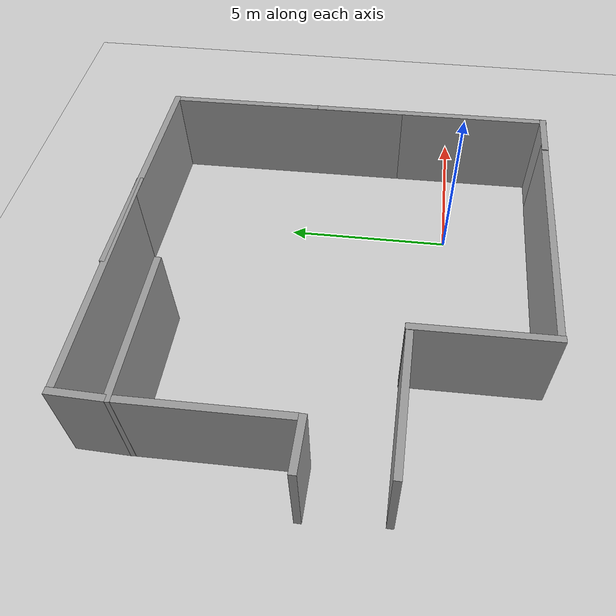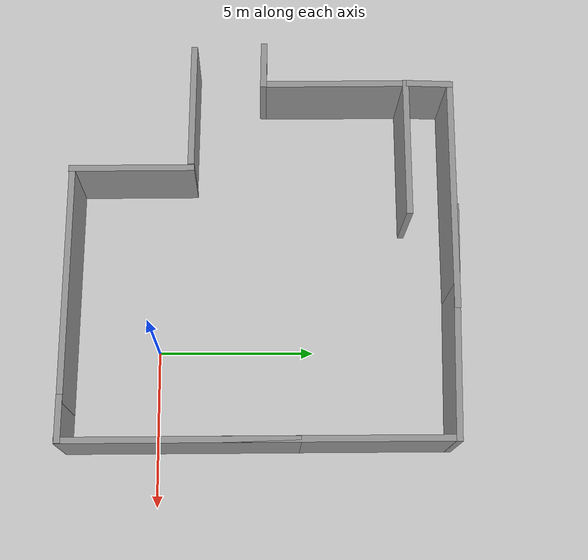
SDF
<sdf version="1.7">
 <world name="default">
  <light name="sun" type="directional">
   <pose>0 0 10 0 -0 0</pose>
   <diffuse>0.8 0.8 0.8 1</diffuse>
   <specular>0.2 0.2 0.2 1</specular>
   <attenuation>
    <range>1000</range>
    <constant>0.9</constant>
    <linear>0.01</linear>
    <quadratic>0.001</quadratic>
   </attenuation>
   <direction>-0.5 0.1 -0.9</direction>
   <spot><inner_angle>0</inner_angle><outer_angle>0</outer_angle><falloff>0</falloff></spot>
  </light>
  <model name="ground_plane">
   <static>1</static>
   <link name="link">
    <collision name="collision">
     <geometry><plane><normal>0 0 1</normal><size>100 100</size></plane></geometry>
     <surface>
      <contact><collide_bitmask>65535</collide_bitmask></contact>
      <friction><ode><mu>100</mu><mu2>50</mu2></ode></friction>
     </surface>
    </collision>
    <visual name="visual">
     <cast_shadows>0</cast_shadows>
     <geometry><plane><normal>0 0 1</normal><size>100 100</size></plane></geometry>
     <material>
      <script><uri>file://media/materials/scripts/gazebo.material</uri><name>Gazebo/Grey</name></script>
     </material>
    </visual>
   </link>
  </model>
  <gravity>0 0 -9.8</gravity>
  <magnetic_field>6e-06 2.3e-05 -4.2e-05</magnetic_field>
  <atmosphere type="adiabatic"/>
  <physics type="ode">
   <max_step_size>0.001</max_step_size>
   <real_time_factor>1</real_time_factor>
   <real_time_update_rate>1000</real_time_update_rate>
  </physics>
  <scene><ambient>0.4 0.4 0.4 1</ambient><background>0.7 0.7 0.7 1</background><shadows>1</shadows></scene>
  <spherical_coordinates>
   <surface_model>EARTH_WGS84</surface_model>
   <latitude_deg>0</latitude_deg>
   <longitude_deg>0</longitude_deg>
   <elevation>0</elevation>
   <heading_deg>0</heading_deg>
  </spherical_coordinates>
  <model name="grey_wall">
   <static>1</static>
   <link name="link">
    <pose>0 0 1.4 0 -0 0</pose>
    <collision name="collision"><geometry><box><size>7.5 0.2 2.8</size></box></geometry></collision>
    <visual name="visual">
     <cast_shadows>0</cast_shadows>
     <geometry><box><size>7.5 0.2 2.8</size></box></geometry>
     <material>
      <script>
       <uri>https://fuel.ignitionrobotics.org/1.0/OpenRobotics/models/Grey Wall/2/files/materials/scripts</uri>
       <uri>https://fuel.ignitionrobotics.org/1.0/OpenRobotics/models/Grey Wall/2/files/materials/textures</uri>
       <name>vrc/grey_wall</name>
      </script>
     </material>
    </visual>
   </link>
   <pose>-4.6505 9.39716 0 0 -0 0</pose>
  </model>
  <model name="grey_wall_clone_0">
   <static>1</static>
   <link name="link">
    <pose>0 0 1.4 0 -0 0</pose>
    <collision name="collision"><geometry><box><size>7.5 0.2 2.8</size></box></geometry></collision>
    <visual name="visual">
     <cast_shadows>0</cast_shadows>
     <geometry><box><size>7.5 0.2 2.8</size></box></geometry>
     <material>
      <script>
       <uri>https://fuel.ignitionrobotics.org/1.0/OpenRobotics/models/Grey Wall/2/files/materials/scripts</uri>
       <uri>https://fuel.ignitionrobotics.org/1.0/OpenRobotics/models/Grey Wall/2/files/materials/textures</uri>
       <name>vrc/grey_wall</name>
      </script>
     </material>
    </visual>
   </link>
   <pose>-0.519816 9.37581 0 0 0 -0.018951</pose>
  </model>
  <model name="grey_wall_clone_clone">
   <static>1</static>
   <link name="link">
    <pose>0 0 1.4 0 -0 0</pose>
    <collision name="collision"><geometry><box><size>7.5 0.2 2.8</size></box></geometry></collision>
    <visual name="visual">
     <cast_shadows>0</cast_shadows>
     <geometry><box><size>7.5 0.2 2.8</size></box></geometry>
     <material>
      <script>
       <uri>https://fuel.ignitionrobotics.org/1.0/OpenRobotics/models/Grey Wall/2/files/materials/scripts</uri>
       <uri>https://fuel.ignitionrobotics.org/1.0/OpenRobotics/models/Grey Wall/2/files/materials/textures</uri>
       <name>vrc/grey_wall</name>
      </script>
     </material>
    </visual>
   </link>
   <pose>3.14385 5.46325 0 0 -0 1.57761</pose>
  </model>
  <model name="grey_wall_clone_0_clone">
   <static>1</static>
   <link name="link">
    <pose>0 0 1.4 0 -0 0</pose>
    <collision name="collision"><geometry><box><size>7.5 0.2 2.8</size></box></geometry></collision>
    <visual name="visual">
     <cast_shadows>0</cast_shadows>
     <geometry><box><size>7.5 0.2 2.8</size></box></geometry>
     <material>
      <script>
       <uri>https://fuel.ignitionrobotics.org/1.0/OpenRobotics/models/Grey Wall/2/files/materials/scripts</uri>
       <uri>https://fuel.ignitionrobotics.org/1.0/OpenRobotics/models/Grey Wall/2/files/materials/textures</uri>
       <name>vrc/grey_wall</name>
      </script>
     </material>
    </visual>
   </link>
   <pose>-1.68952 -2.76039 -0.02319 0 0 -0.018951</pose>
  </model>
  <model name="grey_wall_clone_clone_clone">
   <link name="link">
    <pose>1.68136 0.067415 1.4 0 -0 0</pose>
    <inertial>
     <mass>1</mass>
     <inertia><ixx>1</ixx><ixy>0</ixy><ixz>0</ixz><iyy>1</iyy><iyz>0</iyz><izz>1</izz></inertia>
    </inertial>
    <visual name="visual">
     <cast_shadows>0</cast_shadows>
     <geometry><box><size>4.5 0.2 2.8</size></box></geometry>
     <material>
      <script>
       <uri>https://fuel.ignitionrobotics.org/1.0/OpenRobotics/models/Grey Wall/2/files/materials/scripts</uri>
       <uri>https://fuel.ignitionrobotics.org/1.0/OpenRobotics/models/Grey Wall/2/files/materials/textures</uri>
       <name>vrc/grey_wall</name>
      </script>
      <shader type="pixel"><normal_map>__default__</normal_map></shader>
      <ambient>1 1 1 1</ambient>
      <diffuse>1 1 1 1</diffuse>
      <specular>0 0 0 1</specular>
      <emissive>0 0 0 1</emissive>
     </material>
    </visual>
    <collision name="collision">
     <geometry><box><size>7.5 0.2 2.8</size></box></geometry>
     <surface>
      <friction>
       <ode><mu>1</mu><mu2>1</mu2><fdir1>0 0 0</fdir1><slip1>0</slip1><slip2>0</slip2></ode>
       <torsional>
        <coefficient>1</coefficient>
        <patch_radius>0</patch_radius>
        <surface_radius>0</surface_radius>
        <use_patch_radius>1</use_patch_radius>
        <ode><slip>0</slip></ode>
       </torsional>
      </friction>
      <bounce><restitution_coefficient>0</restitution_coefficient><threshold>1e+06</threshold></bounce>
      <contact>
       <collide_without_contact>0</collide_without_contact>
       <collide_without_contact_bitmask>1</collide_without_contact_bitmask>
       <collide_bitmask>1</collide_bitmask>
       <ode>
        <soft_cfm>0</soft_cfm>
        <soft_erp>0.2</soft_erp>
        <kp>1e+13</kp>
        <kd>1</kd>
        <max_vel>0.01</max_vel>
        <min_depth>0</min_depth>
       </ode>
       <bullet>
        <split_impulse>1</split_impulse>
        <split_impulse_penetration_threshold>-0.01</split_impulse_penetration_threshold>
        <soft_cfm>0</soft_cfm>
        <soft_erp>0.2</soft_erp>
        <kp>1e+13</kp>
        <kd>1</kd>
       </bullet>
      </contact>
     </surface>
    </collision>
   </link>
   <static>1</static>
   <pose>-8.25319 4.05155 0 0 -0 1.57761</pose>
  </model>
  <model name="grey_wall_clone_0_clone_clone_clone">
   <link name="link">
    <pose>0 0 1.4 0 -0 0</pose>
    <inertial>
     <mass>1</mass>
     <inertia><ixx>1</ixx><ixy>0</ixy><ixz>0</ixz><iyy>1</iyy><iyz>0</iyz><izz>1</izz></inertia>
    </inertial>
    <visual name="visual">
     <cast_shadows>0</cast_shadows>
     <geometry><box><size>1.5 0.2 2.8</size></box></geometry>
     <material>
      <script>
       <uri>https://fuel.ignitionrobotics.org/1.0/OpenRobotics/models/Grey Wall/2/files/materials/scripts</uri>
       <uri>https://fuel.ignitionrobotics.org/1.0/OpenRobotics/models/Grey Wall/2/files/materials/textures</uri>
       <name>vrc/grey_wall</name>
      </script>
      <shader type="pixel"><normal_map>__default__</normal_map></shader>
      <ambient>1 1 1 1</ambient>
      <diffuse>1 1 1 1</diffuse>
      <specular>0 0 0 1</specular>
      <emissive>0 0 0 1</emissive>
     </material>
    </visual>
    <collision name="collision">
     <geometry><box><size>7.5 0.2 2.8</size></box></geometry>
     <surface>
      <friction>
       <ode><mu>1</mu><mu2>1</mu2><fdir1>0 0 0</fdir1><slip1>0</slip1><slip2>0</slip2></ode>
       <torsional>
        <coefficient>1</coefficient>
        <patch_radius>0</patch_radius>
        <surface_radius>0</surface_radius>
        <use_patch_radius>1</use_patch_radius>
        <ode><slip>0</slip></ode>
       </torsional>
      </friction>
      <bounce><restitution_coefficient>0</restitution_coefficient><threshold>1e+06</threshold></bounce>
      <contact>
       <collide_without_contact>0</collide_without_contact>
       <collide_without_contact_bitmask>1</collide_without_contact_bitmask>
       <collide_bitmask>1</collide_bitmask>
       <ode>
        <soft_cfm>0</soft_cfm>
        <soft_erp>0.2</soft_erp>
        <kp>1e+13</kp>
        <kd>1</kd>
        <max_vel>0.01</max_vel>
        <min_depth>0</min_depth>
       </ode>
       <bullet>
        <split_impulse>1</split_impulse>
        <split_impulse_penetration_threshold>-0.01</split_impulse_penetration_threshold>
        <soft_cfm>0</soft_cfm>
        <soft_erp>0.2</soft_erp>
        <kp>1e+13</kp>
        <kd>1</kd>
       </bullet>
      </contact>
     </surface>
    </collision>
   </link>
   <static>1</static>
   <pose>-8.98124 3.39991 0.00615 0 0 -0.018951</pose>
  </model>
  <model name="grey_wall_clone_0_clone_clon23re">
   <link name="link">
    <pose>0 0 1.4 0 -0 0</pose>
    <inertial>
     <mass>1</mass>
     <inertia><ixx>1</ixx><ixy>0</ixy><ixz>0</ixz><iyy>1</iyy><iyz>0</iyz><izz>1</izz></inertia>
    </inertial>
    <visual name="visual">
     <cast_shadows>0</cast_shadows>
     <geometry><box><size>4 0.2 2.8</size></box></geometry>
     <material>
      <script>
       <uri>https://fuel.ignitionrobotics.org/1.0/OpenRobotics/models/Grey Wall/2/files/materials/scripts</uri>
       <uri>https://fuel.ignitionrobotics.org/1.0/OpenRobotics/models/Grey Wall/2/files/materials/textures</uri>
       <name>vrc/grey_wall</name>
      </script>
      <shader type="pixel"><normal_map>__default__</normal_map></shader>
      <ambient>1 1 1 1</ambient>
      <diffuse>1 1 1 1</diffuse>
      <specular>0 0 0 1</specular>
      <emissive>0 0 0 1</emissive>
     </material>
    </visual>
    <collision name="collision">
     <geometry><box><size>7.5 0.2 2.8</size></box></geometry>
     <surface>
      <friction>
       <ode><mu>1</mu><mu2>1</mu2><fdir1>0 0 0</fdir1><slip1>0</slip1><slip2>0</slip2></ode>
       <torsional>
        <coefficient>1</coefficient>
        <patch_radius>0</patch_radius>
        <surface_radius>0</surface_radius>
        <use_patch_radius>1</use_patch_radius>
        <ode><slip>0</slip></ode>
       </torsional>
      </friction>
      <bounce><restitution_coefficient>0</restitution_coefficient><threshold>1e+06</threshold></bounce>
      <contact>
       <collide_without_contact>0</collide_without_contact>
       <collide_without_contact_bitmask>1</collide_without_contact_bitmask>
       <collide_bitmask>1</collide_bitmask>
       <ode>
        <soft_cfm>0</soft_cfm>
        <soft_erp>0.2</soft_erp>
        <kp>1e+13</kp>
        <kd>1</kd>
        <max_vel>0.01</max_vel>
        <min_depth>0</min_depth>
       </ode>
       <bullet>
        <split_impulse>1</split_impulse>
        <split_impulse_penetration_threshold>-0.01</split_impulse_penetration_threshold>
        <soft_cfm>0</soft_cfm>
        <soft_erp>0.2</soft_erp>
        <kp>1e+13</kp>
        <kd>1</kd>
       </bullet>
      </contact>
     </surface>
    </collision>
   </link>
   <static>1</static>
   <pose>-7.60849 1.1132 0.0048 0 0 -0.018951</pose>
  </model>
  <model name="grey_wall_clone_0_clone_clon23re_clone">
   <link name="link">
    <pose>0 0 1.4 0 -0 0</pose>
    <inertial>
     <mass>1</mass>
     <inertia><ixx>1</ixx><ixy>0</ixy><ixz>0</ixz><iyy>1</iyy><iyz>0</iyz><izz>1</izz></inertia>
    </inertial>
    <visual name="visual">
     <cast_shadows>0</cast_shadows>
     <geometry><box><size>4 0.2 2.8</size></box></geometry>
     <material>
      <script>
       <uri>https://fuel.ignitionrobotics.org/1.0/OpenRobotics/models/Grey Wall/2/files/materials/scripts</uri>
       <uri>https://fuel.ignitionrobotics.org/1.0/OpenRobotics/models/Grey Wall/2/files/materials/textures</uri>
       <name>vrc/grey_wall</name>
      </script>
      <shader type="pixel"><normal_map>__default__</normal_map></shader>
      <ambient>1 1 1 1</ambient>
      <diffuse>1 1 1 1</diffuse>
      <specular>0 0 0 1</specular>
      <emissive>0 0 0 1</emissive>
     </material>
    </visual>
    <collision name="collision">
     <geometry><box><size>7.5 0.2 2.8</size></box></geometry>
     <surface>
      <friction>
       <ode><mu>1</mu><mu2>1</mu2><fdir1>0 0 0</fdir1><slip1>0</slip1><slip2>0</slip2></ode>
       <torsional>
        <coefficient>1</coefficient>
        <patch_radius>0</patch_radius>
        <surface_radius>0</surface_radius>
        <use_patch_radius>1</use_patch_radius>
        <ode><slip>0</slip></ode>
       </torsional>
      </friction>
      <bounce><restitution_coefficient>0</restitution_coefficient><threshold>1e+06</threshold></bounce>
      <contact>
       <collide_without_contact>0</collide_without_contact>
       <collide_without_contact_bitmask>1</collide_without_contact_bitmask>
       <collide_bitmask>1</collide_bitmask>
       <ode>
        <soft_cfm>0</soft_cfm>
        <soft_erp>0.2</soft_erp>
        <kp>1e+13</kp>
        <kd>1</kd>
        <max_vel>0.01</max_vel>
        <min_depth>0</min_depth>
       </ode>
       <bullet>
        <split_impulse>1</split_impulse>
        <split_impulse_penetration_threshold>-0.01</split_impulse_penetration_threshold>
        <soft_cfm>0</soft_cfm>
        <soft_erp>0.2</soft_erp>
        <kp>1e+13</kp>
        <kd>1</kd>
       </bullet>
      </contact>
     </surface>
    </collision>
   </link>
   <static>1</static>
   <pose>-5.4701 -0.80933 -0.01334 0 0 -1.56332</pose>
  </model>
  <model name="grey_wall_clone_clone_clone_clone">
   <link name="link">
    <pose>1.68136 0.067415 1.4 0 -0 0</pose>
    <inertial>
     <mass>1</mass>
     <inertia><ixx>1</ixx><ixy>0</ixy><ixz>0</ixz><iyy>1</iyy><iyz>0</iyz><izz>1</izz></inertia>
    </inertial>
    <visual name="visual">
     <cast_shadows>0</cast_shadows>
     <geometry><box><size>4.5 0.2 2.8</size></box></geometry>
     <material>
      <script>
       <uri>https://fuel.ignitionrobotics.org/1.0/OpenRobotics/models/Grey Wall/2/files/materials/scripts</uri>
       <uri>https://fuel.ignitionrobotics.org/1.0/OpenRobotics/models/Grey Wall/2/files/materials/textures</uri>
       <name>vrc/grey_wall</name>
      </script>
      <shader type="pixel"><normal_map>__default__</normal_map></shader>
      <ambient>1 1 1 1</ambient>
      <diffuse>1 1 1 1</diffuse>
      <specular>0 0 0 1</specular>
      <emissive>0 0 0 1</emissive>
     </material>
    </visual>
    <collision name="collision">
     <geometry><box><size>7.5 0.2 2.8</size></box></geometry>
     <surface>
      <friction>
       <ode><mu>1</mu><mu2>1</mu2><fdir1>0 0 0</fdir1><slip1>0</slip1><slip2>0</slip2></ode>
       <torsional>
        <coefficient>1</coefficient>
        <patch_radius>0</patch_radius>
        <surface_radius>0</surface_radius>
        <use_patch_radius>1</use_patch_radius>
        <ode><slip>0</slip></ode>
       </torsional>
      </friction>
      <bounce><restitution_coefficient>0</restitution_coefficient><threshold>1e+06</threshold></bounce>
      <contact>
       <collide_without_contact>0</collide_without_contact>
       <collide_without_contact_bitmask>1</collide_without_contact_bitmask>
       <collide_bitmask>1</collide_bitmask>
       <ode>
        <soft_cfm>0</soft_cfm>
        <soft_erp>0.2</soft_erp>
        <kp>1e+13</kp>
        <kd>1</kd>
        <max_vel>0.01</max_vel>
        <min_depth>0</min_depth>
       </ode>
       <bullet>
        <split_impulse>1</split_impulse>
        <split_impulse_penetration_threshold>-0.01</split_impulse_penetration_threshold>
        <soft_cfm>0</soft_cfm>
        <soft_erp>0.2</soft_erp>
        <kp>1e+13</kp>
        <kd>1</kd>
       </bullet>
      </contact>
     </surface>
    </collision>
   </link>
   <static>1</static>
   <pose>-4.51994 8.04676 0.001681 0.006517 1.8e-05 -3.13755</pose>
  </model>
  <model name="grey_wall_clone_0_clone_clone_clone_clone">
   <link name="link">
    <pose>0 0 1.4 0 -0 0</pose>
    <inertial>
     <mass>1</mass>
     <inertia><ixx>1</ixx><ixy>0</ixy><ixz>0</ixz><iyy>1</iyy><iyz>0</iyz><izz>1</izz></inertia>
    </inertial>
    <visual name="visual">
     <cast_shadows>0</cast_shadows>
     <geometry><box><size>1.5 0.2 2.8</size></box></geometry>
     <material>
      <script>
       <uri>https://fuel.ignitionrobotics.org/1.0/OpenRobotics/models/Grey Wall/2/files/materials/scripts</uri>
       <uri>https://fuel.ignitionrobotics.org/1.0/OpenRobotics/models/Grey Wall/2/files/materials/textures</uri>
       <name>vrc/grey_wall</name>
      </script>
      <shader type="pixel"><normal_map>__default__</normal_map></shader>
      <ambient>1 1 1 1</ambient>
      <diffuse>1 1 1 1</diffuse>
      <specular>0 0 0 1</specular>
      <emissive>0 0 0 1</emissive>
     </material>
    </visual>
    <collision name="collision">
     <geometry><box><size>7.5 0.2 2.8</size></box></geometry>
     <surface>
      <friction>
       <ode><mu>1</mu><mu2>1</mu2><fdir1>0 0 0</fdir1><slip1>0</slip1><slip2>0</slip2></ode>
       <torsional>
        <coefficient>1</coefficient>
        <patch_radius>0</patch_radius>
        <surface_radius>0</surface_radius>
        <use_patch_radius>1</use_patch_radius>
        <ode><slip>0</slip></ode>
       </torsional>
      </friction>
      <bounce><restitution_coefficient>0</restitution_coefficient><threshold>1e+06</threshold></bounce>
      <contact>
       <collide_without_contact>0</collide_without_contact>
       <collide_without_contact_bitmask>1</collide_without_contact_bitmask>
       <collide_bitmask>1</collide_bitmask>
       <ode>
        <soft_cfm>0</soft_cfm>
        <soft_erp>0.2</soft_erp>
        <kp>1e+13</kp>
        <kd>1</kd>
        <max_vel>0.01</max_vel>
        <min_depth>0</min_depth>
       </ode>
       <bullet>
        <split_impulse>1</split_impulse>
        <split_impulse_penetration_threshold>-0.01</split_impulse_penetration_threshold>
        <soft_cfm>0</soft_cfm>
        <soft_erp>0.2</soft_erp>
        <kp>1e+13</kp>
        <kd>1</kd>
       </bullet>
      </contact>
     </surface>
    </collision>
   </link>
   <static>1</static>
   <pose>-8.33275 8.75648 0.00615 0 -0 1.54199</pose>
  </model>
  <model name="grey_wall_clone_clone_clone_0">
   <static>1</static>
   <link name="link">
    <pose>0 0 1.4 0 -0 0</pose>
    <collision name="collision"><geometry><box><size>7.5 0.2 2.8</size></box></geometry></collision>
    <visual name="visual">
     <cast_shadows>0</cast_shadows>
     <geometry><box><size>7.5 0.2 2.8</size></box></geometry>
     <material>
      <script>
       <uri>https://fuel.ignitionrobotics.org/1.0/OpenRobotics/models/Grey Wall/2/files/materials/scripts</uri>
       <uri>https://fuel.ignitionrobotics.org/1.0/OpenRobotics/models/Grey Wall/2/files/materials/textures</uri>
       <name>vrc/grey_wall</name>
      </script>
     </material>
    </visual>
   </link>
   <pose>3.17797 0.782838 0 0 -0 1.57761</pose>
  </model>
  <model name="grey_wall_clone_0_clone_clone_clone_clone_0">
   <link name="link">
    <pose>0 0 1.4 0 -0 0</pose>
    <inertial>
     <mass>1</mass>
     <inertia><ixx>1</ixx><ixy>0</ixy><ixz>0</ixz><iyy>1</iyy><iyz>0</iyz><izz>1</izz></inertia>
    </inertial>
    <visual name="visual">
     <cast_shadows>0</cast_shadows>
     <geometry><box><size>1.5 0.2 2.8</size></box></geometry>
     <material>
      <script>
       <uri>https://fuel.ignitionrobotics.org/1.0/OpenRobotics/models/Grey Wall/2/files/materials/scripts</uri>
       <uri>https://fuel.ignitionrobotics.org/1.0/OpenRobotics/models/Grey Wall/2/files/materials/textures</uri>
       <name>vrc/grey_wall</name>
      </script>
      <shader type="pixel"><normal_map>__default__</normal_map></shader>
      <ambient>1 1 1 1</ambient>
      <diffuse>1 1 1 1</diffuse>
      <specular>0 0 0 1</specular>
      <emissive>0 0 0 1</emissive>
     </material>
    </visual>
    <collision name="collision">
     <geometry><box><size>7.5 0.2 2.8</size></box></geometry>
     <surface>
      <friction>
       <ode><mu>1</mu><mu2>1</mu2><fdir1>0 0 0</fdir1><slip1>0</slip1><slip2>0</slip2></ode>
       <torsional>
        <coefficient>1</coefficient>
        <patch_radius>0</patch_radius>
        <surface_radius>0</surface_radius>
        <use_patch_radius>1</use_patch_radius>
        <ode><slip>0</slip></ode>
       </torsional>
      </friction>
      <bounce><restitution_coefficient>0</restitution_coefficient><threshold>1e+06</threshold></bounce>
      <contact>
       <collide_without_contact>0</collide_without_contact>
       <collide_without_contact_bitmask>1</collide_without_contact_bitmask>
       <collide_bitmask>1</collide_bitmask>
       <ode>
        <soft_cfm>0</soft_cfm>
        <soft_erp>0.2</soft_erp>
        <kp>1e+13</kp>
        <kd>1</kd>
        <max_vel>0.01</max_vel>
        <min_depth>0</min_depth>
       </ode>
       <bullet>
        <split_impulse>1</split_impulse>
        <split_impulse_penetration_threshold>-0.01</split_impulse_penetration_threshold>
        <soft_cfm>0</soft_cfm>
        <soft_erp>0.2</soft_erp>
        <kp>1e+13</kp>
        <kd>1</kd>
       </bullet>
      </contact>
     </surface>
    </collision>
   </link>
   <static>1</static>
   <pose>2.5416 -2.84142 0.00615 0 0 -0.018951</pose>
  </model>
 </world>
</sdf>
